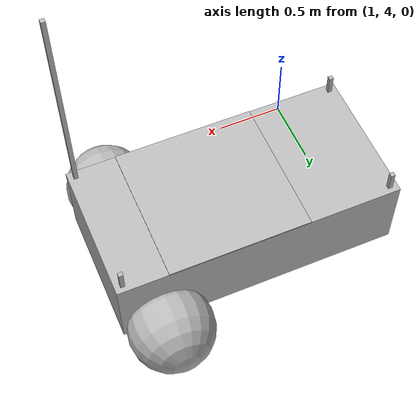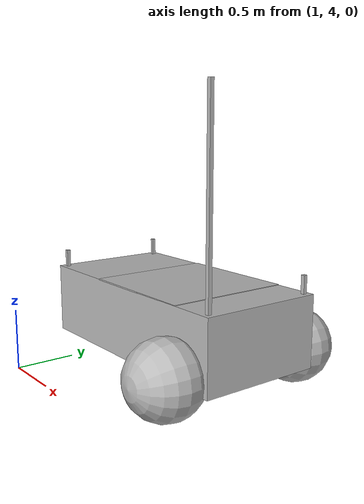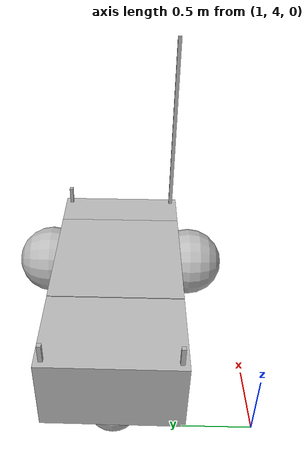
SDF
<?xml version="1.0" ?>
<sdf version='1.6'>

<model name='rover_uwb'>
      <pose>2 5 0.325 0 -0 0</pose>

      <link name='chassis'>
        <pose>-0.151427 -0 0.175 0 -0 0</pose>
        <inertial>
          <mass>1.14395</mass>
          <inertia>
            <ixx>0.126164</ixx>
            <ixy>0</ixy>
            <ixz>0</ixz>
            <iyy>0.416519</iyy>
            <iyz>0</iyz>
            <izz>0.481014</izz>
          </inertia>
        </inertial>
        <visual name='visual'>
          <geometry>
            <box>
              <size>2.01142 1 0.568726</size>
            </box>
          </geometry>
        </visual>
        <collision name='collision'>
          <geometry>
            <box>
              <size>2.01142 1 0.568726</size>
            </box>
          </geometry>
          <surface>
            <friction>
              <ode>
                <mu>0.7</mu>
                <mu2>0.7</mu2>
                <slip1>0</slip1>
                <slip2>0</slip2>
              </ode>
            </friction>
            <contact>
              <ode>
                <soft_cfm>0</soft_cfm>
                <soft_erp>0.2</soft_erp>
                <kp>1e+13</kp>
                <kd>1</kd>
                <max_vel>0.01</max_vel>
                <min_depth>0.01</min_depth>
              </ode>
              <bullet>
                <soft_cfm>0</soft_cfm>
                <soft_erp>0.2</soft_erp>
                <kp>1e+13</kp>
                <kd>1</kd>
		<split_impulse>1</split_impulse>
		<split_impulse_penetration_threshold>-0.01</split_impulse_penetration_threshold>
              </bullet>
            </contact>
          </surface>
        </collision>
      </link>

      <link name='left_wheel'>
        <pose>0.554283 0.625029 -0.025 -1.5707 0 0</pose>
        <inertial>
          <mass>2</mass>
          <inertia>
            <ixx>0.145833</ixx>
            <ixy>0</ixy>
            <ixz>0</ixz>
            <iyy>0.145833</iyy>
            <iyz>0</iyz>
            <izz>0.125</izz>
          </inertia>
        </inertial>
        <visual name='visual'>
          <geometry>
            <sphere>
              <radius>0.3</radius>
            </sphere>
          </geometry>
        </visual>
        <collision name='collision'>
          <geometry>
            <sphere>
              <radius>0.3</radius>
            </sphere>
          </geometry>
          <surface>
            <friction>
              <ode>
                <mu>1</mu>
                <mu2>1</mu2>
                <slip1>0</slip1>
                <slip2>0</slip2>
              </ode>
            </friction>
            <contact>
              <ode>
                <soft_cfm>0</soft_cfm>
                <soft_erp>0.2</soft_erp>
                <kp>1e+13</kp>
                <kd>1</kd>
                <max_vel>0.01</max_vel>
                <min_depth>0.01</min_depth>
              </ode>
            </contact>
          </surface>
        </collision>
      </link>

      <link name='right_wheel'>
        <pose>0.554282 -0.625029 -0.025 -1.5707 0 0</pose>
        <inertial>
          <mass>2</mass>
          <inertia>
            <ixx>0.145833</ixx>
            <ixy>0</ixy>
            <ixz>0</ixz>
            <iyy>0.145833</iyy>
            <iyz>0</iyz>
            <izz>0.125</izz>
          </inertia>
        </inertial>
        <visual name='visual'>
          <geometry>
            <sphere>
              <radius>0.3</radius>
            </sphere>
          </geometry>
        </visual>
        <collision name='collision'>
          <geometry>
            <sphere>
              <radius>0.3</radius>
            </sphere>
          </geometry>
          <surface>
            <friction>
              <ode>
                <mu>1</mu>
                <mu2>1</mu2>
                <slip1>0</slip1>
                <slip2>0</slip2>
              </ode>
            </friction>
            <contact>
              <ode>
                <soft_cfm>0</soft_cfm>
                <soft_erp>0.2</soft_erp>
                <kp>1e+13</kp>
                <kd>1</kd>
                <max_vel>0.01</max_vel>
                <min_depth>0.01</min_depth>
              </ode>
            </contact>
          </surface>
        </collision>
      </link>

      <link name='caster'>
        <pose>-0.957138 -0 -0.125 0 -0 0</pose>
        <inertial>
          <mass>1</mass>
          <inertia>
            <ixx>0.1</ixx>
            <ixy>0</ixy>
            <ixz>0</ixz>
            <iyy>0.1</iyy>
            <iyz>0</iyz>
            <izz>0.1</izz>
          </inertia>
        </inertial>
        <visual name='visual'>
          <geometry>
            <sphere>
              <radius>0.2</radius>
            </sphere>
          </geometry>
        </visual>
        <collision name='collision'>
          <geometry>
            <sphere>
              <radius>0.2</radius>
            </sphere>
          </geometry>
        </collision>
      </link>

      <link name='anchor_0'>
        <pose>-1.1 -0.45 0.5 0 -0 0</pose>
        <inertial>
          <mass>1</mass>
          <inertia>
            <ixx>0.1</ixx>
            <ixy>0</ixy>
            <ixz>0</ixz>
            <iyy>0.1</iyy>
            <iyz>0</iyz>
            <izz>0.1</izz>
          </inertia>
        </inertial>
        <visual name='visual'>
          <geometry>
            <box>
              <size>0.03 0.03 0.2</size>
            </box>
          </geometry>
        </visual>
        <collision name='collision'>
          <geometry>
            <box>
              <size>0.03 0.03 0.2</size>
            </box>
          </geometry>
        </collision>

      </link>

      <joint name='anchor_0_joint' type='fixed'>
        <parent>chassis</parent>
        <child>anchor_0</child>
        <axis>
          <xyz>0 0 1</xyz>
        </axis>
      </joint>

      <link name='anchor_1'>
        <pose>0.8 0.45 0.5 0 -0 0</pose>
        <inertial>
          <mass>1</mass>
          <inertia>
            <ixx>0.1</ixx>
            <ixy>0</ixy>
            <ixz>0</ixz>
            <iyy>0.1</iyy>
            <iyz>0</iyz>
            <izz>0.1</izz>
          </inertia>
        </inertial>
        <visual name='visual'>
          <geometry>
            <box>
              <size>0.03 0.03 0.2</size>
            </box>
          </geometry>
        </visual>
        <collision name='collision'>
          <geometry>
            <box>
              <size>0.03 0.03 0.2</size>
            </box>
          </geometry>
        </collision>

      </link>

      <joint name='anchor_1_joint' type='fixed'>
        <parent>chassis</parent>
        <child>anchor_1</child>
        <axis>
          <xyz>0 0 1</xyz>
        </axis>
      </joint>

      <link name='anchor_2'>
        <pose>-1.1 +0.45 0.5 0 -0 0</pose>
        <inertial>
          <mass>1</mass>
          <inertia>
            <ixx>0.1</ixx>
            <ixy>0</ixy>
            <ixz>0</ixz>
            <iyy>0.1</iyy>
            <iyz>0</iyz>
            <izz>0.1</izz>
          </inertia>
        </inertial>
        <visual name='visual'>
          <geometry>
            <box>
              <size>0.03 0.03 0.2</size>
            </box>
          </geometry>
        </visual>
        <collision name='collision'>
          <geometry>
            <box>
              <size>0.03 0.03 0.2</size>
            </box>
          </geometry>
        </collision>
      </link>

      <joint name='anchor_2_joint' type='fixed'>
        <parent>chassis</parent>
        <child>anchor_2</child>
        <axis>
          <xyz>0 0 1</xyz>
        </axis>
      </joint>

      <link name='anchor_3'>
        <pose>+0.8 -0.45 1.2 0 -0 0</pose>
        <inertial>
          <mass>1</mass>
          <inertia>
            <ixx>0.1</ixx>
            <ixy>0</ixy>
            <ixz>0</ixz>
            <iyy>0.1</iyy>
            <iyz>0</iyz>
            <izz>0.1</izz>
          </inertia>
        </inertial>
        <visual name='visual'>
          <geometry>
            <box>
              <size>0.03 0.03 1.5</size>
            </box>
          </geometry>
        </visual>
        <collision name='collision'>
          <geometry>
            <box>
              <size>0.03 0.03 0.7</size>
            </box>
          </geometry>
        </collision>
      </link>

      <joint name='anchor_3_joint' type='fixed'>
        <parent>chassis</parent>
        <child>anchor_3</child>
        <axis>
          <xyz>0 0 1</xyz>
        </axis>
      </joint>

    <link name='apriltag'>
    <pose frame=''>0 0 0.459 0 0 0</pose>
      <visual name='apriltag_Visual'>
        <geometry>
          <box>
          <size>1.0 1.0 0.01</size>
          </box>
        </geometry>
           <material>
          <script>
            <uri>models//Apriltag36_11_00000/materials/scripts</uri>
            <uri>models//Apriltag36_11_00000/materials/textures</uri>
            <name>Apriltag36_11_00000</name>
          </script>
        </material>
      </visual>
     </link>

      <joint name='apriltag_joint' type='fixed'>
        <parent>chassis</parent>
        <child>apriltag</child>
        <axis>
          <xyz>0 0 1</xyz>
        </axis>
      </joint>

      <joint name='left_wheel_joint' type='revolute'>
        <parent>chassis</parent>
        <child>left_wheel</child>
        <axis>
          <xyz>0 0 1</xyz>
          <limit>
            <lower>-1.79769e+308</lower>
            <upper>1.79769e+308</upper>
          </limit>
        </axis>
      </joint>

      <joint name='right_wheel_joint' type='revolute'>
        <parent>chassis</parent>
        <child>right_wheel</child>
        <axis>
          <xyz>0 0 1</xyz>
          <limit>
            <lower>-1.79769e+308</lower>
            <upper>1.79769e+308</upper>
          </limit>
        </axis>
      </joint>

      <joint name='caster_wheel' type='ball'>
        <parent>chassis</parent>
        <child>caster</child>
      </joint>

      <plugin name='diff_drive' filename='libgazebo_ros_diff_drive.so'>

        <ros>
          <namespace>/rover_uwb
        </namespace>
        </ros>

        <!-- wheels -->
        <left_joint>left_wheel_joint</left_joint>
        <right_joint>right_wheel_joint</right_joint>

        <!-- kinematics -->
        <wheel_separation>1.25</wheel_separation>
        <wheel_diameter>0.6</wheel_diameter>

        <!-- limits -->
        <max_wheel_torque>20.0</max_wheel_torque>
        <max_wheel_acceleration>1.0</max_wheel_acceleration>

        <!-- output -->
        <publish_odom>true</publish_odom>
        <publish_odom_tf>true</publish_odom_tf>
        <publish_wheel_tf>true</publish_wheel_tf>

        <odometry_frame>odom_rover</odometry_frame>
        <robot_base_frame>chassis</robot_base_frame>

      </plugin>

      <plugin name="gazebo_ros_p3d" filename="libgazebo_ros_p3d.so">
        <ros>
          <namespace>/chassis_anchor_0</namespace>
        </ros>
        <body_name>chassis</body_name>
        <frame_name>anchor_0</frame_name>
        <update_rate>50</update_rate>
        <xyz_offset>0 0 0</xyz_offset>
        <rpy_offset>0 0 0</rpy_offset>
        <gaussian_noise>0</gaussian_noise>
      </plugin>

      <plugin name="gazebo_ros_p3d" filename="libgazebo_ros_p3d.so">
        <ros>
          <namespace>/chassis</namespace>
        </ros>
        <body_name>chassis</body_name>
        <frame_name>world</frame_name>
        <update_rate>50</update_rate>
        <xyz_offset>0 0 0</xyz_offset>
        <rpy_offset>0 0 0</rpy_offset>
        <gaussian_noise>0</gaussian_noise>
      </plugin>

      <plugin name="gazebo_ros_p3d" filename="libgazebo_ros_p3d.so">
        <ros>
          <namespace>/anchor_0</namespace>
        </ros>
        <body_name>anchor_0</body_name>
        <frame_name>world</frame_name>
        <update_rate>50</update_rate>
        <xyz_offset>0 0 0</xyz_offset>
        <rpy_offset>0 0 0</rpy_offset>
        <gaussian_noise>0</gaussian_noise>
      </plugin>

        <plugin name="uwb_plugin" filename="libgazebo_ros_uwb.so">
			<link_name>anchor_0</link_name>
			<update_rate>1</update_rate>
		</plugin>

        <plugin name="uwb_plugin" filename="libgazebo_ros_uwb.so">
			<link_name>anchor_1</link_name>
			<update_rate>1</update_rate>
		</plugin>

        <plugin name="uwb_plugin" filename="libgazebo_ros_uwb.so">
			<link_name>anchor_2</link_name>
			<update_rate>1</update_rate>
		</plugin>

        <plugin name="uwb_plugin" filename="libgazebo_ros_uwb.so">
			<link_name>anchor_3</link_name>
			<update_rate>1</update_rate>
		</plugin>

  </model>
</sdf>
